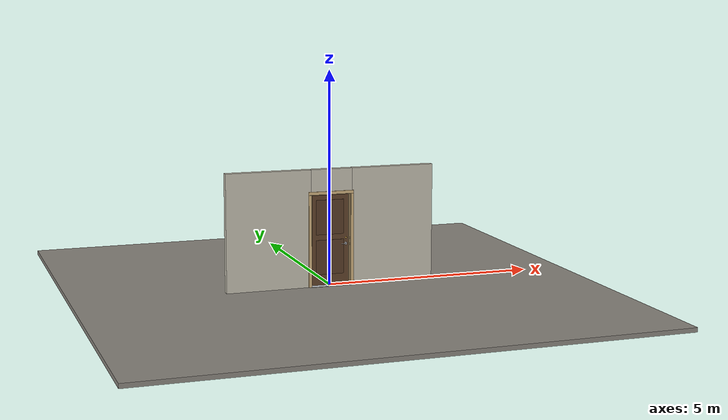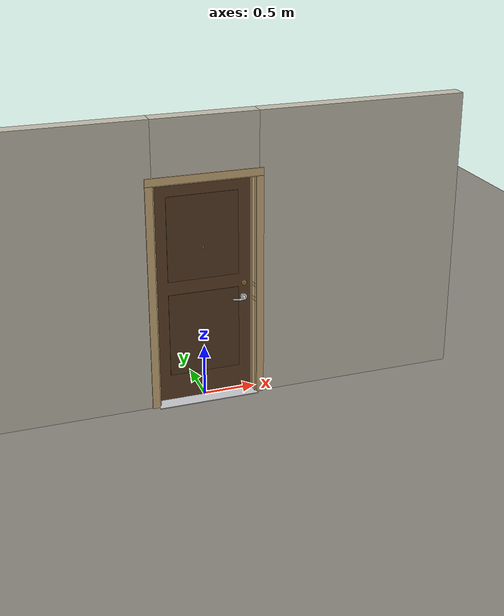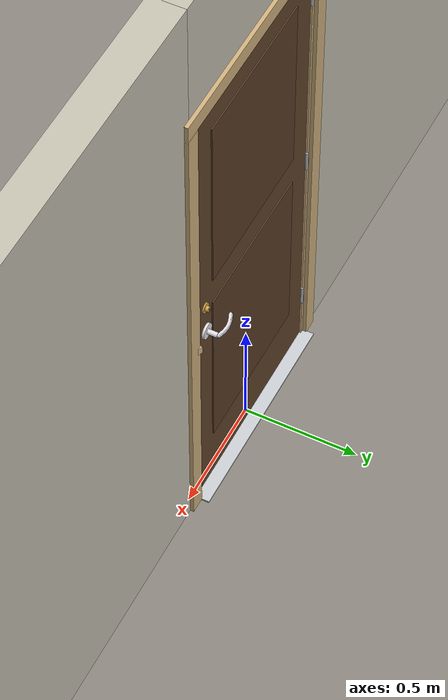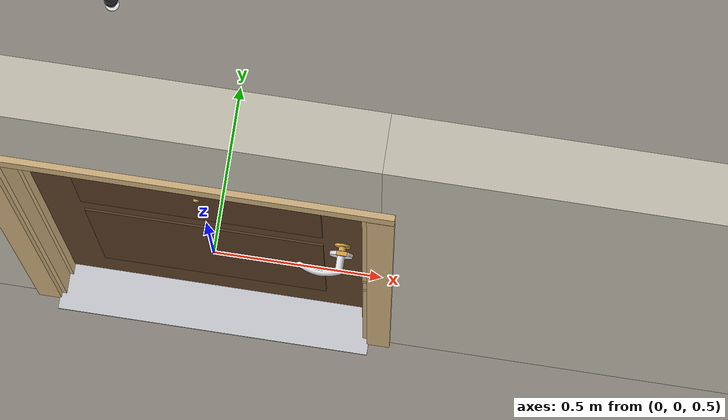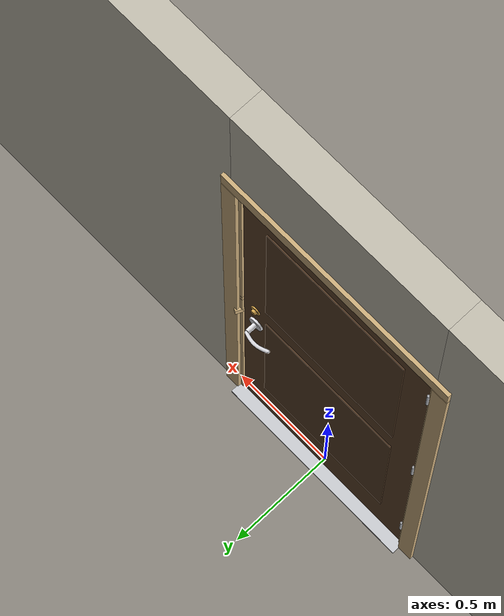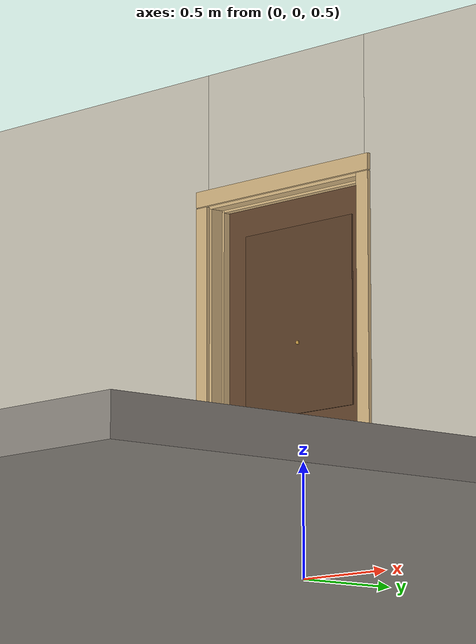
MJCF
<?xml version="1.0" ?>
<mujoco model="db0531_swing_single_full">
  <compiler angle="radian" meshdir="../../hardware" texturedir="../../textures" autolimits="true" inertiafromgeom="false"/>
  <option timestep="0.002" integrator="implicitfast" cone="elliptic" impratio="10" noslip_iterations="3">
    <flag multiccd="enable"/>
  </option>
  <size memory="16M"/>
  <default>
    <geom condim="4" solref="0.005 1" solimp="0.95 0.99 0.001"/>
    <joint solreflimit="0.005 1" solimplimit="0.95 0.99 0.001"/>
    <tendon solreflimit="0.005 1"/>
    <equality solref="0.002 1"/>
  </default>
  <visual>
    <headlight ambient="0.4 0.4 0.4" diffuse="0.7 0.7 0.7" specular="0.2 0.2 0.2"/>
    <quality shadowsize="4096"/>
    <map znear="0.01" zfar="60"/>
  </visual>
  <asset>
    <mesh name="cyl_face_e9e5036966" file="cyl_face_e9e5036966.obj"/>
    <mesh name="hinge_2af0f4d6ca" file="hinge_2af0f4d6ca.obj"/>
    <mesh name="hinge_jamb_c0c0a62ada" file="hinge_jamb_c0c0a62ada.obj"/>
    <mesh name="lever_748f08efca" file="lever_748f08efca.obj"/>
    <mesh name="peephole_f829311a59" file="peephole_f829311a59.obj"/>
    <mesh name="thumbturn_eb5c9899a3" file="thumbturn_eb5c9899a3.obj"/>
    <material name="mat_floor" rgba="0.55 0.53 0.5 1" specular="0.2" shininess="0.15" reflectance="0"/>
    <material name="mat_wall" rgba="0.78 0.76 0.7 1" specular="0.2" shininess="0.1" reflectance="0"/>
    <material name="mat_leaf" rgba="0.378 0.261 0.165 1" specular="0.2" shininess="0.5" reflectance="0"/>
    <material name="mat_leaf_panel" rgba="0.348 0.24 0.152 1" specular="0.2" shininess="0.5" reflectance="0"/>
    <material name="mat_hinge" rgba="0.65 0.66 0.68 1" specular="0.74" shininess="0.5" reflectance="0.36"/>
    <material name="mat_op_chrome" rgba="0.9 0.9 0.92 1" specular="0.8" shininess="0.9" reflectance="0.4"/>
    <material name="mat_trim" rgba="0.85 0.66 0.3 1" specular="0.8" shininess="0.75" reflectance="0.4"/>
    <material name="mat_bolt" rgba="0.85 0.66 0.3 1" specular="0.8" shininess="0.75" reflectance="0.4"/>
    <material name="mat_deadbolt" rgba="0.85 0.66 0.3 1" specular="0.8" shininess="0.75" reflectance="0.4"/>
    <material name="mat_frame" rgba="0.82 0.7 0.5 1" specular="0.2" shininess="0.45" reflectance="0"/>
    <material name="mat_threshold" rgba="0.8 0.81 0.83 1" specular="0.8" shininess="0.6" reflectance="0.4"/>
    <material name="mat_peephole" rgba="0.85 0.66 0.3 1" specular="0.8" shininess="0.75" reflectance="0.4"/>
    <material name="mat_bumper_stop" rgba="0.08 0.08 0.08 1" specular="0.2" shininess="0.1" reflectance="0"/>
    <material name="mat_stop_base" rgba="0.9 0.9 0.92 1" specular="0.8" shininess="0.9" reflectance="0.4"/>
    <texture name="skybox" type="skybox" builtin="gradient" rgb1="0.6 0.7 0.85" rgb2="0.9 0.92 0.95" width="256" height="256"/>
  </asset>
  <worldbody>
    <light name="sun" pos="1.5 -2.5 4" dir="-0.3 0.5 -0.8" directional="true" diffuse="0.8 0.8 0.8" specular="0.3 0.3 0.3" castshadow="true"/>
    <light name="fill" pos="-1.5 2.5 3" dir="0.3 -0.5 -0.7" directional="true" diffuse="0.35 0.35 0.4" castshadow="false"/>
    <camera name="robot_view" pos="0 -2.681312 1.812087" xyaxes="1 0 0 0 0.26963 0.962964" fovy="52"/>
    <camera name="far_view" pos="0 2.594313 1.812087" xyaxes="-1 0 0 0 -0.26963 0.962964" fovy="52"/>
    <camera name="iso" pos="2.004737 -2.259262 2.234138" xyaxes="0.741536 0.670913 0 -0.242917 0.268487 0.932151" fovy="46"/>
    <camera name="detail_handle" pos="0.4769 -0.877 1.245" xyaxes="0.97561 0.219512 0 -0.070934 0.315262 0.94635" fovy="38"/>
    <geom name="floor" type="box" size="6 6 0.05" pos="0 0 -0.05" material="mat_floor" group="0" contype="1" conaffinity="1" friction="0.8 0.005 0.0001" density="2400"/>
    <geom name="wall_left" type="box" size="1.01025 0.0725 1.3735" pos="-1.48975 -0.0435 1.3735" material="mat_wall" group="0" contype="1" conaffinity="1" friction="0.6 0.005 0.0001" density="800"/>
    <geom name="wall_right" type="box" size="0.99525 0.0725 1.3735" pos="1.50475 -0.0435 1.3735" material="mat_wall" group="0" contype="1" conaffinity="1" friction="0.6 0.005 0.0001" density="800"/>
    <geom name="wall_header" type="box" size="0.4945 0.0725 0.2755" pos="0.015 -0.0435 2.4715" material="mat_wall" group="0" contype="1" conaffinity="1" friction="0.6 0.005 0.0001" density="800"/>
    <geom name="hinge_0_jamb" type="mesh" mesh="hinge_jamb_c0c0a62ada" pos="-0.4575 0.029 0.259" quat="0 1 0 0" material="mat_hinge" group="1" contype="0" conaffinity="0" density="7850"/>
    <geom name="hinge_1_jamb" type="mesh" mesh="hinge_jamb_c0c0a62ada" pos="-0.4575 0.029 1.076" quat="0 1 0 0" material="mat_hinge" group="1" contype="0" conaffinity="0" density="7850"/>
    <geom name="hinge_2_jamb" type="mesh" mesh="hinge_jamb_c0c0a62ada" pos="-0.4575 0.029 1.963" quat="0 1 0 0" material="mat_hinge" group="1" contype="0" conaffinity="0" density="7850"/>
    <geom name="leaf_deadbolt_strike_b" type="box" size="0.0155 0.003 0.0005" pos="0.46 0 1.0865" quat="-0.5 -0.5 0.5 0.5" material="mat_deadbolt" group="1" contype="0" conaffinity="0" density="7800"/>
    <geom name="leaf_deadbolt_strike_l" type="box" size="0.003 0.0155 0.0005" pos="0.46 0.0125 1.105" quat="-0.5 -0.5 0.5 0.5" material="mat_deadbolt" group="1" contype="0" conaffinity="0" density="7800"/>
    <geom name="leaf_deadbolt_strike_t" type="box" size="0.0155 0.003 0.0005" pos="0.46 0 1.1235" quat="-0.5 -0.5 0.5 0.5" material="mat_deadbolt" group="1" contype="0" conaffinity="0" density="7800"/>
    <geom name="leaf_deadbolt_strike_r" type="box" size="0.003 0.0155 0.0005" pos="0.46 -0.0125 1.105" quat="-0.5 -0.5 0.5 0.5" material="mat_deadbolt" group="1" contype="0" conaffinity="0" density="7800"/>
    <geom name="jamb_hinge" type="box" size="0.0095 0.0725 1.0735" pos="-0.47 -0.0435 1.0735" material="mat_frame" group="0" contype="1" conaffinity="1" friction="0.6 0.005 0.0001" density="400"/>
    <geom name="strike_965_wall_n" type="box" size="0.0245 0.054075 0.0167" pos="0.485 -0.061925 0.965" material="mat_frame" group="0" contype="1" conaffinity="1" friction="0.6 0.005 0.0001" density="400"/>
    <geom name="strike_965_wall_p" type="box" size="0.0245 0.008 0.0167" pos="0.485 0.01585 0.965" material="mat_frame" group="0" contype="1" conaffinity="1" friction="0.6 0.005 0.0001" density="400"/>
    <geom name="strike_965_ramp" type="box" size="0.0245 0.01649 0.0167" pos="0.489636 0.028673 0.965" quat="0.977148 0 0 -0.212558" material="mat_frame" group="0" contype="1" conaffinity="1" friction="0.12 0.005 0.0001" density="400"/>
    <geom name="strike_965_back" type="box" size="0.01615 0.00785 0.0167" pos="0.49335 0 0.965" material="mat_frame" group="0" contype="1" conaffinity="1" friction="0.6 0.005 0.0001" density="400"/>
    <geom name="strike_1105_wall_n" type="box" size="0.0245 0.05325 0.0155" pos="0.485 -0.06275 1.105" material="mat_frame" group="0" contype="1" conaffinity="1" friction="0.6 0.005 0.0001" density="400"/>
    <geom name="strike_1105_wall_p" type="box" size="0.0245 0.00975 0.0155" pos="0.485 0.01925 1.105" material="mat_frame" group="0" contype="1" conaffinity="1" friction="0.6 0.005 0.0001" density="400"/>
    <geom name="strike_1105_back" type="box" size="0.0098 0.0095 0.0155" pos="0.4997 0 1.105" material="mat_frame" group="0" contype="1" conaffinity="1" friction="0.6 0.005 0.0001" density="400"/>
    <geom name="jamb_strike_0" type="box" size="0.0245 0.0725 0.47415" pos="0.485 -0.0435 0.47415" material="mat_frame" group="0" contype="1" conaffinity="1" friction="0.6 0.005 0.0001" density="400"/>
    <geom name="jamb_strike_1" type="box" size="0.0245 0.0725 0.0539" pos="0.485 -0.0435 1.0356" material="mat_frame" group="0" contype="1" conaffinity="1" friction="0.6 0.005 0.0001" density="400"/>
    <geom name="jamb_strike_2" type="box" size="0.0245 0.0725 0.51325" pos="0.485 -0.0435 1.63375" material="mat_frame" group="0" contype="1" conaffinity="1" friction="0.6 0.005 0.0001" density="400"/>
    <geom name="jamb_head" type="box" size="0.4945 0.0725 0.0095" pos="0.015 -0.0435 2.1565" material="mat_frame" group="0" contype="1" conaffinity="1" friction="0.6 0.005 0.0001" density="400"/>
    <geom name="head_stud" type="box" size="0.4945 0.0725 0.015" pos="0.015 -0.0435 2.181" material="mat_wall" group="0" contype="1" conaffinity="1" friction="0.6 0.005 0.0001" density="500"/>
    <geom name="stop_hinge" type="box" size="0.0055 0.016 1.0735" pos="-0.455 -0.0385 1.0735" material="mat_frame" group="0" contype="1" conaffinity="1" friction="0.6 0.005 0.0001" density="400"/>
    <geom name="stop_strike" type="box" size="0.0055 0.016 1.0735" pos="0.455 -0.0385 1.0735" material="mat_frame" group="0" contype="1" conaffinity="1" friction="0.6 0.005 0.0001" density="400"/>
    <geom name="stop_head" type="box" size="0.4605 0.016 0.0055" pos="0 -0.0385 2.1415" material="mat_frame" group="0" contype="1" conaffinity="1" friction="0.6 0.005 0.0001" density="400"/>
    <geom name="casing_l_n" type="box" size="0.035 0.008 1.083" pos="-0.5095 -0.124 1.0735" material="mat_frame" group="2" contype="0" conaffinity="0" density="400"/>
    <geom name="casing_r_n" type="box" size="0.035 0.008 1.083" pos="0.5095 -0.124 1.0735" material="mat_frame" group="2" contype="0" conaffinity="0" density="400"/>
    <geom name="casing_h_n" type="box" size="0.5445 0.008 0.035" pos="0 -0.124 2.196" material="mat_frame" group="2" contype="0" conaffinity="0" density="400"/>
    <geom name="casing_l_p" type="box" size="0.035 0.008 1.083" pos="-0.5095 0.037 1.0735" material="mat_frame" group="2" contype="0" conaffinity="0" density="400"/>
    <geom name="casing_r_p" type="box" size="0.035 0.008 1.083" pos="0.5095 0.037 1.0735" material="mat_frame" group="2" contype="0" conaffinity="0" density="400"/>
    <geom name="casing_h_p" type="box" size="0.5445 0.008 0.035" pos="0 0.037 2.196" material="mat_frame" group="2" contype="0" conaffinity="0" density="400"/>
    <geom name="threshold" type="box" size="0.4795 0.1225 0.004" pos="0 -0.0435 0.004" material="mat_threshold" group="0" contype="1" conaffinity="1" friction="0.6 0.005 0.0001" density="2700"/>
    <geom name="door_stop_base" type="cylinder" size="0.022 0.003" pos="-0.4735 0.8059 0.003" material="mat_stop_base" group="0" contype="1" conaffinity="1" friction="0.6 0.005 0.0001" density="7850"/>
    <geom name="door_stop_post" type="cylinder" size="0.012 0.0245" pos="-0.4735 0.8059 0.0305" material="mat_stop_base" group="0" contype="1" conaffinity="1" friction="0.6 0.005 0.0001" density="7850"/>
    <geom name="door_stop_bumper" type="cylinder" size="0.022 0.02" pos="-0.4735 0.8059 0.075" material="mat_bumper_stop" group="0" contype="1" conaffinity="1" friction="0.6 0.005 0.0001" density="1100"/>
    <site name="approach_point" pos="0 -1.5 0" quat="1 0 0 0" size="0.05" rgba="0.2 0.9 0.2 0.5" group="4"/>
    <site name="goal_point" pos="0 1.5 0" quat="1 0 0 0" size="0.05" rgba="0.2 0.9 0.2 0.5" group="4"/>
    <site name="door_plane_center" pos="0 0 1.0735" quat="1 0 0 0" size="0.02" rgba="0.2 0.9 0.2 0.5" group="4"/>
    <body name="leaf" pos="-0.4605 0 0">
      <inertial pos="0.457402 0.000158 1.076367" mass="60.808138" quat="0.500065 0.499823 -0.500176 0.499935" diaginertia="4.318603035 23.080052295 27.378558135"/>
      <joint name="leaf_hinge" type="hinge" axis="0 0 1" pos="0.003 0.029 0" limited="true" range="0 1.570796" damping="0.318966" frictionloss="1.243316" armature="0.02"/>
      <geom name="leaf_slab" type="box" size="0.457 0.022 1.067" pos="0.46 0 1.076" material="mat_leaf" group="0" contype="1" conaffinity="1" friction="0.4 0.005 0.0001" density="1"/>
      <geom name="leaf_panel_0_n" type="box" size="0.33646 0.003 0.40564" pos="0.46 -0.025 0.66938" material="mat_leaf_panel" group="1" contype="0" conaffinity="0" density="1"/>
      <geom name="leaf_panel_0_p" type="box" size="0.33646 0.003 0.40564" pos="0.46 0.025 0.66938" material="mat_leaf_panel" group="1" contype="0" conaffinity="0" density="1"/>
      <geom name="leaf_panel_1_n" type="box" size="0.33646 0.003 0.40564" pos="0.46 -0.025 1.61066" material="mat_leaf_panel" group="1" contype="0" conaffinity="0" density="1"/>
      <geom name="leaf_panel_1_p" type="box" size="0.33646 0.003 0.40564" pos="0.46 0.025 1.61066" material="mat_leaf_panel" group="1" contype="0" conaffinity="0" density="1"/>
      <geom name="hinge_0" type="mesh" mesh="hinge_2af0f4d6ca" pos="0.003 0.029 0.259" quat="0 1 0 0" material="mat_hinge" group="1" contype="0" conaffinity="0" density="7850"/>
      <geom name="hinge_1" type="mesh" mesh="hinge_2af0f4d6ca" pos="0.003 0.029 1.076" quat="0 1 0 0" material="mat_hinge" group="1" contype="0" conaffinity="0" density="7850"/>
      <geom name="hinge_2" type="mesh" mesh="hinge_2af0f4d6ca" pos="0.003 0.029 1.963" quat="0 1 0 0" material="mat_hinge" group="1" contype="0" conaffinity="0" density="7850"/>
      <geom name="leaf_latch_bolt_faceplate" type="box" size="0.0006 0.01235 0.0267" pos="0.9164 0 0.965" material="mat_bolt" group="1" contype="0" conaffinity="0" density="8500"/>
      <geom name="leaf_deadbolt_faceplate" type="box" size="0.0006 0.014 0.0245" pos="0.9164 0 1.105" material="mat_deadbolt" group="1" contype="0" conaffinity="0" density="8500"/>
      <geom name="leaf_deadbolt_cylinder_face" type="mesh" mesh="cyl_face_e9e5036966" pos="0.852 0.022 1.105" quat="-0.707107 0.707107 0 0" material="mat_deadbolt" group="1" contype="0" conaffinity="0" density="7100"/>
      <geom name="peephole" type="mesh" mesh="peephole_f829311a59" pos="0.46 -0.022 1.509" quat="0.707107 0.707107 0 0" material="mat_peephole" group="2" contype="0" conaffinity="0" density="8500"/>
      <site name="leaf_edge_mid" pos="0.917 0 1.067" quat="1 0 0 0" size="0.02" rgba="0.2 0.9 0.2 0.5" group="4"/>
      <body name="leaf_handle" pos="0.847 0 0.965">
        <inertial pos="-0.024187 0 0" mass="0.847798" quat="0.707107 0 0 -0.707107" diaginertia="0.00118733 0.003222067 0.004272567"/>
        <joint name="leaf_handle_hinge" type="hinge" axis="0 -1 0" limited="true" range="0 0.87" damping="0.205085" frictionloss="0.04" stiffness="0.9" springref="-0.444444" armature="0.01"/>
        <geom name="leaf_handle_spindle" type="cylinder" size="0.006 0.03" pos="0 0 0" quat="0.707107 -0.707107 0 0" material="mat_op_chrome" group="1" contype="0" conaffinity="0" density="7850"/>
        <geom name="leaf_handle_lever_n" type="mesh" mesh="lever_748f08efca" pos="0 -0.022 0" quat="0.707107 0.707107 0 0" material="mat_op_chrome" group="1" contype="0" conaffinity="0" density="3000"/>
        <geom name="leaf_handle_lever_col_n" type="capsule" size="0.008 0.048" pos="-0.056 -0.077 0" quat="0.707107 0 -0.707107 0" material="mat_op_chrome" group="3" contype="1" conaffinity="1" rgba="0.8 0.3 0.3 0.25" friction="0.7 0.01 0.0001" density="3000"/>
        <geom name="leaf_handle_hub_col_n" type="cylinder" size="0.012 0.022" pos="0 -0.052 0" quat="0.707107 -0.707107 0 0" material="mat_op_chrome" group="3" contype="1" conaffinity="1" rgba="0.8 0.3 0.3 0.25" friction="0.6 0.005 0.0001" density="3000"/>
        <geom name="leaf_handle_lever_p" type="mesh" mesh="lever_748f08efca" pos="0 0.022 0" quat="-0.707107 0.707107 0 0" material="mat_op_chrome" group="1" contype="0" conaffinity="0" density="3000"/>
        <geom name="leaf_handle_lever_col_p" type="capsule" size="0.008 0.048" pos="-0.056 0.077 0" quat="0.707107 0 -0.707107 0" material="mat_op_chrome" group="3" contype="1" conaffinity="1" rgba="0.8 0.3 0.3 0.25" friction="0.7 0.01 0.0001" density="3000"/>
        <geom name="leaf_handle_hub_col_p" type="cylinder" size="0.012 0.022" pos="0 0.052 0" quat="0.707107 -0.707107 0 0" material="mat_op_chrome" group="3" contype="1" conaffinity="1" rgba="0.8 0.3 0.3 0.25" friction="0.6 0.005 0.0001" density="3000"/>
        <site name="leaf_handle_grip_n" pos="-0.0896 -0.077 0" quat="1 0 0 0" size="0.012" rgba="0.2 0.9 0.2 0.5" group="4"/>
        <site name="leaf_handle_grip_p" pos="-0.0896 0.077 0" quat="1 0 0 0" size="0.012" rgba="0.2 0.9 0.2 0.5" group="4"/>
      </body>
      <body name="leaf_latch_bolt" pos="0.917 0 0.965">
        <inertial pos="-0.00865 0 0" mass="0.041419" quat="0.92388 -0.382683 0 0" diaginertia="0.000000798 0.000005598 0.000005598"/>
        <joint name="leaf_latch_bolt_slide" type="slide" axis="-1 0 0" limited="true" range="0 0.0127" damping="2" frictionloss="0.3" stiffness="300" springref="-0.008333" armature="0.1"/>
        <geom name="leaf_latch_bolt_capsule" type="capsule" size="0.00635 0.015" pos="-0.00865 0 0" quat="0.707107 0 0.707107 0" material="mat_bolt" group="0" contype="1" conaffinity="1" friction="0.2 0.005 0.0001" density="8500"/>
      </body>
      <body name="leaf_deadbolt" pos="0.917 0 1.105">
        <inertial pos="-0.0277 0 0" mass="0.18836" quat="0 0 0.707107 0.707107" diaginertia="0.000013829 0.000052194 0.000057986"/>
        <joint name="leaf_deadbolt_slide" type="slide" axis="-1 0 0" limited="true" range="0 0.0254" damping="5" frictionloss="1.5" armature="0.1" ref="0.0254"/>
        <geom name="leaf_deadbolt_box" type="box" size="0.0277 0.008 0.0125" pos="-0.0277 0 0" material="mat_deadbolt" group="0" contype="1" conaffinity="1" friction="0.3 0.005 0.0001" density="8500"/>
      </body>
      <body name="leaf_deadbolt_thumbturn" pos="0.852 -0.022 1.105">
        <inertial pos="0 -0.012928 0" mass="0.178946" quat="0.000001 0.707107 -0.707107 -0.000001" diaginertia="0.000026045 0.000026215 0.000032438"/>
        <joint name="leaf_deadbolt_thumbturn_hinge" type="hinge" axis="0 1 0" limited="true" range="0 1.5708" damping="0.05" frictionloss="0.35" armature="0.005" ref="1.5708"/>
        <geom name="leaf_deadbolt_thumbturn_mesh" type="mesh" mesh="thumbturn_eb5c9899a3" pos="0 0 0" quat="0.499999 0.499999 0.500001 -0.500001" material="mat_deadbolt" group="0" contype="1" conaffinity="1" friction="0.6 0.005 0.0001" density="7100"/>
        <geom name="leaf_deadbolt_thumbturn_col" type="box" size="0.006 0.012 0.016" pos="0 -0.02 0" quat="0.707105 0 0.707108 0" material="mat_deadbolt" group="3" contype="1" conaffinity="1" rgba="0.8 0.3 0.3 0.25" friction="0.6 0.005 0.0001" density="7100"/>
      </body>
    </body>
  </worldbody>
  <tendon>
    <fixed name="leaf_latch_bolt_coupling" limited="true" range="0 10">
      <joint joint="leaf_latch_bolt_slide" coef="1"/>
      <joint joint="leaf_handle_hinge" coef="-0.016076"/>
    </fixed>
  </tendon>
  <equality>
    <joint name="leaf_deadbolt_couple" joint1="leaf_deadbolt_slide" joint2="leaf_deadbolt_thumbturn_hinge" polycoef="0 0.01617 0 0 0" active="true"/>
  </equality>
  <contact>
    <exclude body1="leaf_deadbolt" body2="leaf_deadbolt_thumbturn"/>
  </contact>
  <sensor>
    <jointpos name="leaf_hinge_pos" joint="leaf_hinge"/>
    <jointvel name="leaf_hinge_vel" joint="leaf_hinge"/>
    <jointpos name="leaf_handle_hinge_pos" joint="leaf_handle_hinge"/>
    <jointvel name="leaf_handle_hinge_vel" joint="leaf_handle_hinge"/>
    <jointpos name="leaf_latch_bolt_slide_pos" joint="leaf_latch_bolt_slide"/>
    <jointvel name="leaf_latch_bolt_slide_vel" joint="leaf_latch_bolt_slide"/>
    <jointpos name="leaf_deadbolt_slide_pos" joint="leaf_deadbolt_slide"/>
    <jointvel name="leaf_deadbolt_slide_vel" joint="leaf_deadbolt_slide"/>
    <jointpos name="leaf_deadbolt_thumbturn_hinge_pos" joint="leaf_deadbolt_thumbturn_hinge"/>
    <jointvel name="leaf_deadbolt_thumbturn_hinge_vel" joint="leaf_deadbolt_thumbturn_hinge"/>
  </sensor>
</mujoco>
